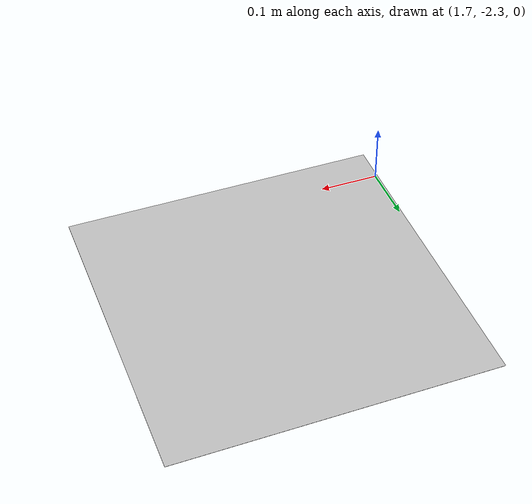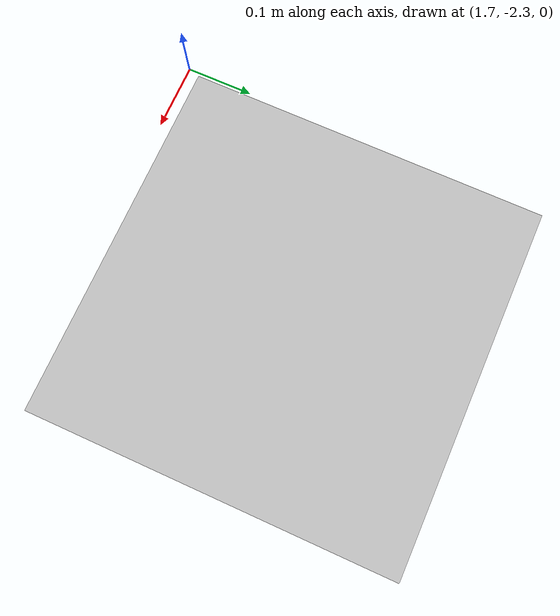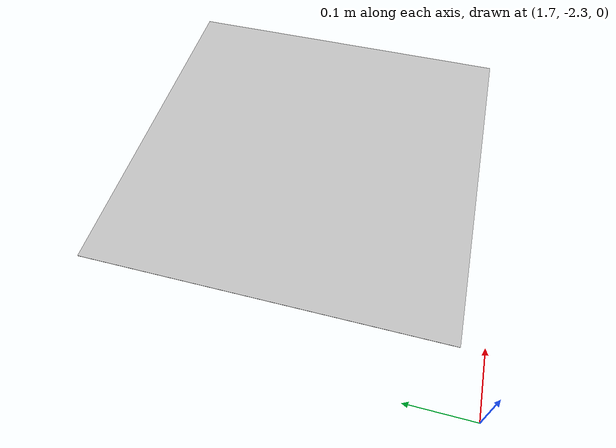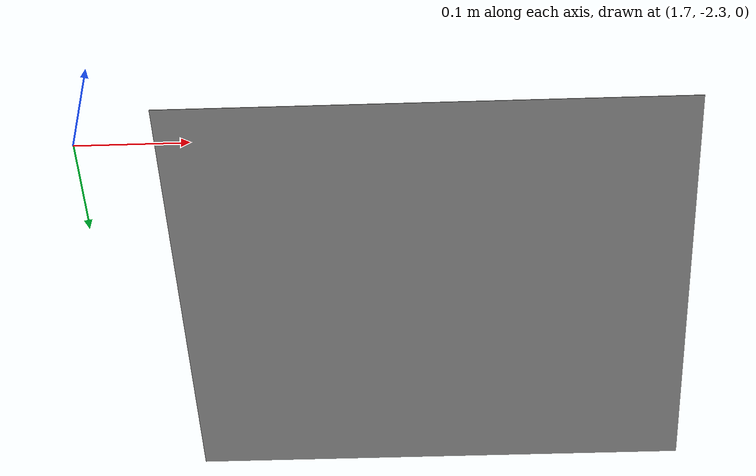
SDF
<?xml version="1.0" encoding="UTF-8"?>
<sdf version="1.4">
   <model name="landing_place">
      <static>true</static>
      <pose>2 -2 0.1 0 0 4.712</pose>
      <link name="link">
         <collision name="collision">
            <geometry>
               <plane>
                  <normal>0 0 1</normal>
                  <size>0.5 0.5</size>
               </plane>
            </geometry>
            <surface>
               <friction>
                  <ode>
                     <mu>100</mu>
                     <mu2>50</mu2>
                  </ode>
               </friction>
            </surface>
         </collision>
         <visual name="visual">
            <cast_shadows>false</cast_shadows>
            <geometry>
               <plane>
                  <normal>0 0 1</normal>
                  <size>0.5 0.5</size>
               </plane>
            </geometry>
            <material>
               <script>
                  <uri>model://landing_place/materials/scripts</uri>
                  <uri>model://landing_place/materials/textures/</uri>
                  <name>lpcode/Image</name>
               </script>
            </material>
         </visual>
      </link>
   </model>
</sdf>
